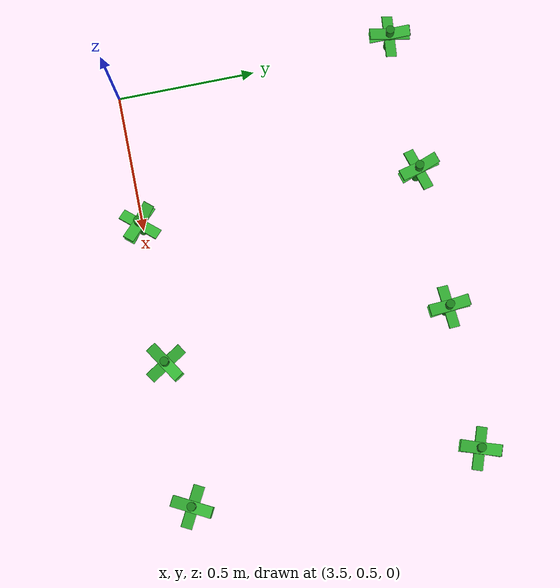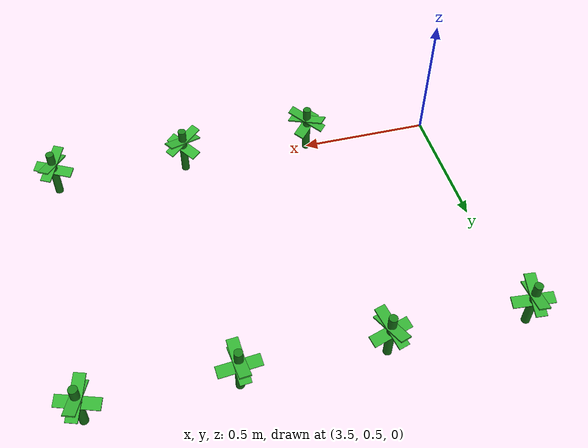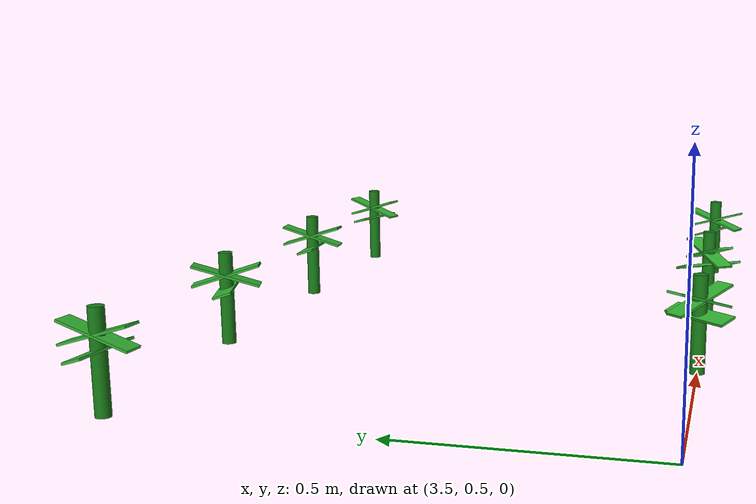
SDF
<sdf version="1.6">
 <world name="farm_world">
  <include><uri>model://sun</uri></include>
  <model name="plant_71">
   <pose>3.5 1.5 0 0 0 1.4778127716644365</pose>
   <static>true</static>
   <link name="link">
    <visual name="stem">
     <pose>0 0 0.1 0 0 0</pose>
     <geometry><cylinder><radius>0.015</radius><length>0.2</length></cylinder></geometry>
     <material><ambient>0.1 0.5 0.1 1</ambient><diffuse>0.1 0.5 0.1 1</diffuse></material>
    </visual>
    <visual name="leaf_1">
     <pose>0 0 0.15 0 0.3 0</pose>
     <geometry><box><size>0.15 0.04 0.005</size></box></geometry>
     <material><ambient>0.2 0.7 0.2 1</ambient><diffuse>0.2 0.7 0.2 1</diffuse></material>
    </visual>
    <visual name="leaf_2">
     <pose>0 0 0.15 0 -0.3 0</pose>
     <geometry><box><size>0.15 0.04 0.005</size></box></geometry>
     <material><ambient>0.2 0.7 0.2 1</ambient><diffuse>0.2 0.7 0.2 1</diffuse></material>
    </visual>
    <visual name="leaf_3">
     <pose>0 0 0.12 0.3 0 1.57</pose>
     <geometry><box><size>0.15 0.04 0.005</size></box></geometry>
     <material><ambient>0.2 0.7 0.2 1</ambient><diffuse>0.2 0.7 0.2 1</diffuse></material>
    </visual>
    <collision name="collision">
     <pose>0 0 0.1 0 0 0</pose>
     <geometry><cylinder><radius>0.05</radius><length>0.2</length></cylinder></geometry>
    </collision>
   </link>
  </model>
  <model name="plant_74">
   <pose>4.0 0.5 0 0 0 2.4303544761056526</pose>
   <static>true</static>
   <link name="link">
    <visual name="stem">
     <pose>0 0 0.1 0 0 0</pose>
     <geometry><cylinder><radius>0.015</radius><length>0.2</length></cylinder></geometry>
     <material><ambient>0.1 0.5 0.1 1</ambient><diffuse>0.1 0.5 0.1 1</diffuse></material>
    </visual>
    <visual name="leaf_1">
     <pose>0 0 0.15 0 0.3 0</pose>
     <geometry><box><size>0.15 0.04 0.005</size></box></geometry>
     <material><ambient>0.2 0.7 0.2 1</ambient><diffuse>0.2 0.7 0.2 1</diffuse></material>
    </visual>
    <visual name="leaf_2">
     <pose>0 0 0.15 0 -0.3 0</pose>
     <geometry><box><size>0.15 0.04 0.005</size></box></geometry>
     <material><ambient>0.2 0.7 0.2 1</ambient><diffuse>0.2 0.7 0.2 1</diffuse></material>
    </visual>
    <visual name="leaf_3">
     <pose>0 0 0.12 0.3 0 1.57</pose>
     <geometry><box><size>0.15 0.04 0.005</size></box></geometry>
     <material><ambient>0.2 0.7 0.2 1</ambient><diffuse>0.2 0.7 0.2 1</diffuse></material>
    </visual>
    <collision name="collision">
     <pose>0 0 0.1 0 0 0</pose>
     <geometry><cylinder><radius>0.05</radius><length>0.2</length></cylinder></geometry>
    </collision>
   </link>
  </model>
  <model name="plant_75">
   <pose>4.0 1.5 0 0 0 1.8674299785409643</pose>
   <static>true</static>
   <link name="link">
    <visual name="stem">
     <pose>0 0 0.1 0 0 0</pose>
     <geometry><cylinder><radius>0.015</radius><length>0.2</length></cylinder></geometry>
     <material><ambient>0.1 0.5 0.1 1</ambient><diffuse>0.1 0.5 0.1 1</diffuse></material>
    </visual>
    <visual name="leaf_1">
     <pose>0 0 0.15 0 0.3 0</pose>
     <geometry><box><size>0.15 0.04 0.005</size></box></geometry>
     <material><ambient>0.2 0.7 0.2 1</ambient><diffuse>0.2 0.7 0.2 1</diffuse></material>
    </visual>
    <visual name="leaf_2">
     <pose>0 0 0.15 0 -0.3 0</pose>
     <geometry><box><size>0.15 0.04 0.005</size></box></geometry>
     <material><ambient>0.2 0.7 0.2 1</ambient><diffuse>0.2 0.7 0.2 1</diffuse></material>
    </visual>
    <visual name="leaf_3">
     <pose>0 0 0.12 0.3 0 1.57</pose>
     <geometry><box><size>0.15 0.04 0.005</size></box></geometry>
     <material><ambient>0.2 0.7 0.2 1</ambient><diffuse>0.2 0.7 0.2 1</diffuse></material>
    </visual>
    <collision name="collision">
     <pose>0 0 0.1 0 0 0</pose>
     <geometry><cylinder><radius>0.05</radius><length>0.2</length></cylinder></geometry>
    </collision>
   </link>
  </model>
  <model name="plant_78">
   <pose>4.5 0.5 0 0 0 0.5674104376832054</pose>
   <static>true</static>
   <link name="link">
    <visual name="stem">
     <pose>0 0 0.1 0 0 0</pose>
     <geometry><cylinder><radius>0.015</radius><length>0.2</length></cylinder></geometry>
     <material><ambient>0.1 0.5 0.1 1</ambient><diffuse>0.1 0.5 0.1 1</diffuse></material>
    </visual>
    <visual name="leaf_1">
     <pose>0 0 0.15 0 0.3 0</pose>
     <geometry><box><size>0.15 0.04 0.005</size></box></geometry>
     <material><ambient>0.2 0.7 0.2 1</ambient><diffuse>0.2 0.7 0.2 1</diffuse></material>
    </visual>
    <visual name="leaf_2">
     <pose>0 0 0.15 0 -0.3 0</pose>
     <geometry><box><size>0.15 0.04 0.005</size></box></geometry>
     <material><ambient>0.2 0.7 0.2 1</ambient><diffuse>0.2 0.7 0.2 1</diffuse></material>
    </visual>
    <visual name="leaf_3">
     <pose>0 0 0.12 0.3 0 1.57</pose>
     <geometry><box><size>0.15 0.04 0.005</size></box></geometry>
     <material><ambient>0.2 0.7 0.2 1</ambient><diffuse>0.2 0.7 0.2 1</diffuse></material>
    </visual>
    <collision name="collision">
     <pose>0 0 0.1 0 0 0</pose>
     <geometry><cylinder><radius>0.05</radius><length>0.2</length></cylinder></geometry>
    </collision>
   </link>
  </model>
  <model name="plant_79">
   <pose>4.5 1.5 0 0 0 1.6541702556852154</pose>
   <static>true</static>
   <link name="link">
    <visual name="stem">
     <pose>0 0 0.1 0 0 0</pose>
     <geometry><cylinder><radius>0.015</radius><length>0.2</length></cylinder></geometry>
     <material><ambient>0.1 0.5 0.1 1</ambient><diffuse>0.1 0.5 0.1 1</diffuse></material>
    </visual>
    <visual name="leaf_1">
     <pose>0 0 0.15 0 0.3 0</pose>
     <geometry><box><size>0.15 0.04 0.005</size></box></geometry>
     <material><ambient>0.2 0.7 0.2 1</ambient><diffuse>0.2 0.7 0.2 1</diffuse></material>
    </visual>
    <visual name="leaf_2">
     <pose>0 0 0.15 0 -0.3 0</pose>
     <geometry><box><size>0.15 0.04 0.005</size></box></geometry>
     <material><ambient>0.2 0.7 0.2 1</ambient><diffuse>0.2 0.7 0.2 1</diffuse></material>
    </visual>
    <visual name="leaf_3">
     <pose>0 0 0.12 0.3 0 1.57</pose>
     <geometry><box><size>0.15 0.04 0.005</size></box></geometry>
     <material><ambient>0.2 0.7 0.2 1</ambient><diffuse>0.2 0.7 0.2 1</diffuse></material>
    </visual>
    <collision name="collision">
     <pose>0 0 0.1 0 0 0</pose>
     <geometry><cylinder><radius>0.05</radius><length>0.2</length></cylinder></geometry>
    </collision>
   </link>
  </model>
  <model name="plant_82">
   <pose>5.0 0.5 0 0 0 1.080816755138466</pose>
   <static>true</static>
   <link name="link">
    <visual name="stem">
     <pose>0 0 0.1 0 0 0</pose>
     <geometry><cylinder><radius>0.015</radius><length>0.2</length></cylinder></geometry>
     <material><ambient>0.1 0.5 0.1 1</ambient><diffuse>0.1 0.5 0.1 1</diffuse></material>
    </visual>
    <visual name="leaf_1">
     <pose>0 0 0.15 0 0.3 0</pose>
     <geometry><box><size>0.15 0.04 0.005</size></box></geometry>
     <material><ambient>0.2 0.7 0.2 1</ambient><diffuse>0.2 0.7 0.2 1</diffuse></material>
    </visual>
    <visual name="leaf_2">
     <pose>0 0 0.15 0 -0.3 0</pose>
     <geometry><box><size>0.15 0.04 0.005</size></box></geometry>
     <material><ambient>0.2 0.7 0.2 1</ambient><diffuse>0.2 0.7 0.2 1</diffuse></material>
    </visual>
    <visual name="leaf_3">
     <pose>0 0 0.12 0.3 0 1.57</pose>
     <geometry><box><size>0.15 0.04 0.005</size></box></geometry>
     <material><ambient>0.2 0.7 0.2 1</ambient><diffuse>0.2 0.7 0.2 1</diffuse></material>
    </visual>
    <collision name="collision">
     <pose>0 0 0.1 0 0 0</pose>
     <geometry><cylinder><radius>0.05</radius><length>0.2</length></cylinder></geometry>
    </collision>
   </link>
  </model>
  <model name="plant_83">
   <pose>5.0 1.5 0 0 0 1.2405549922680212</pose>
   <static>true</static>
   <link name="link">
    <visual name="stem">
     <pose>0 0 0.1 0 0 0</pose>
     <geometry><cylinder><radius>0.015</radius><length>0.2</length></cylinder></geometry>
     <material><ambient>0.1 0.5 0.1 1</ambient><diffuse>0.1 0.5 0.1 1</diffuse></material>
    </visual>
    <visual name="leaf_1">
     <pose>0 0 0.15 0 0.3 0</pose>
     <geometry><box><size>0.15 0.04 0.005</size></box></geometry>
     <material><ambient>0.2 0.7 0.2 1</ambient><diffuse>0.2 0.7 0.2 1</diffuse></material>
    </visual>
    <visual name="leaf_2">
     <pose>0 0 0.15 0 -0.3 0</pose>
     <geometry><box><size>0.15 0.04 0.005</size></box></geometry>
     <material><ambient>0.2 0.7 0.2 1</ambient><diffuse>0.2 0.7 0.2 1</diffuse></material>
    </visual>
    <visual name="leaf_3">
     <pose>0 0 0.12 0.3 0 1.57</pose>
     <geometry><box><size>0.15 0.04 0.005</size></box></geometry>
     <material><ambient>0.2 0.7 0.2 1</ambient><diffuse>0.2 0.7 0.2 1</diffuse></material>
    </visual>
    <collision name="collision">
     <pose>0 0 0.1 0 0 0</pose>
     <geometry><cylinder><radius>0.05</radius><length>0.2</length></cylinder></geometry>
    </collision>
   </link>
  </model>
 </world>
</sdf>
